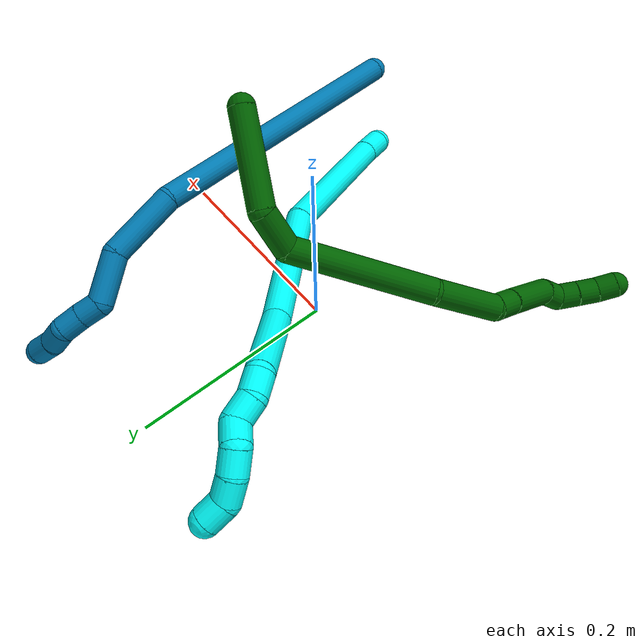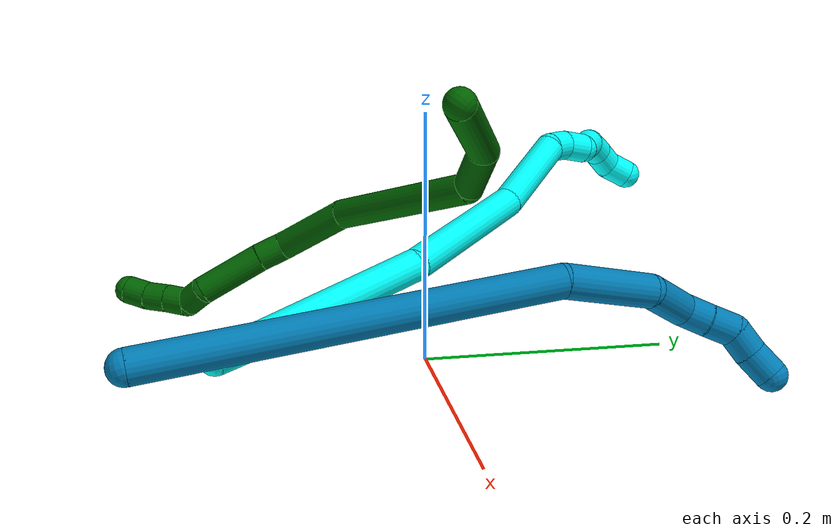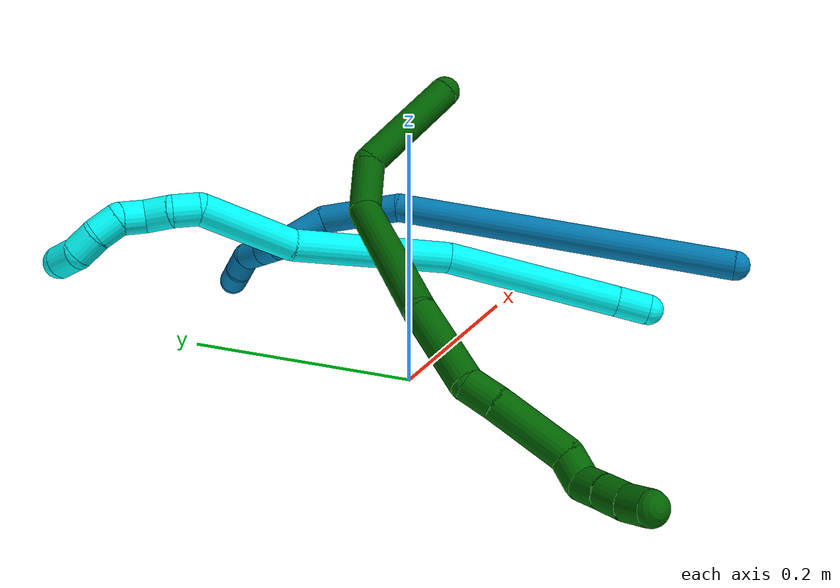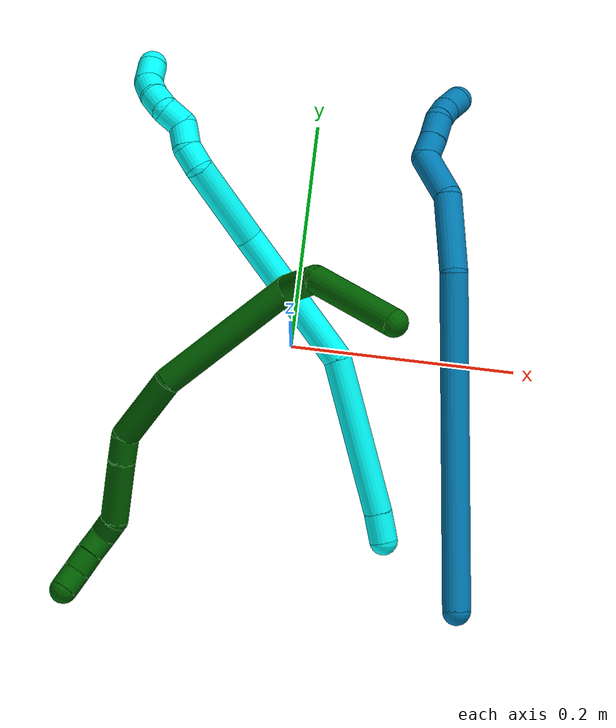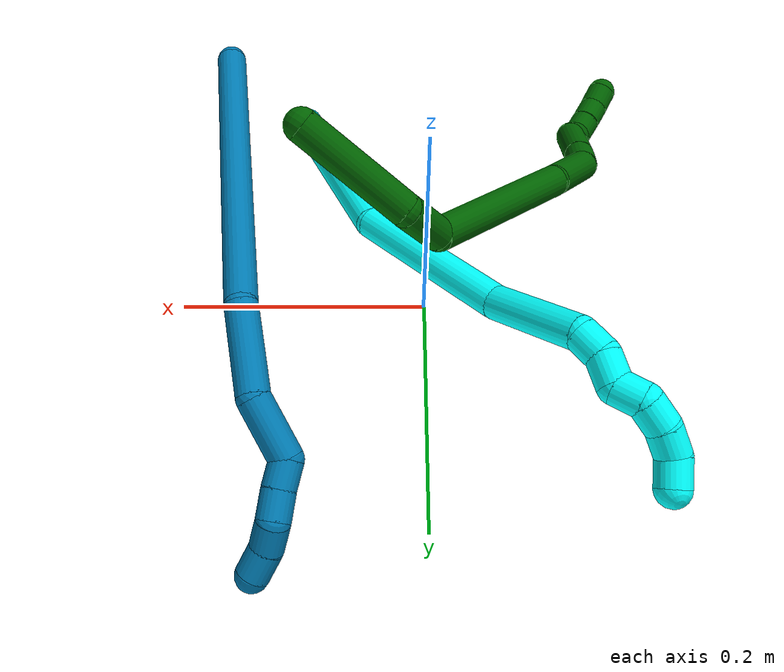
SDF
<sdf version="1.7">
 <world name="default">
  <model name="bin">
   <static>1</static>
   <link name="bottom">
    <collision name="collision-bottom">
     <pose>0 0 -0.01 0 -0 0</pose>
     <geometry><box><size>0.8 0.6 0.02</size></box></geometry>
     <surface>
      <friction><ode><mu>100</mu><mu2>100</mu2></ode></friction>
      <contact><collide_bitmask>65535</collide_bitmask></contact>
     </surface>
    </collision>
   </link>
   <link name="west_wall">
    <collision name="collision-west_wall">
     <pose>-0.41 0 0.1 0 -0 0</pose>
     <geometry><box><size>0.02 0.6 0.2</size></box></geometry>
     <surface>
      <friction><ode><mu>100</mu><mu2>100</mu2></ode></friction>
      <contact><collide_bitmask>65535</collide_bitmask></contact>
     </surface>
    </collision>
   </link>
   <link name="east_wall">
    <collision name="collision-east_wall">
     <pose>0.41 0 0.1 0 -0 0</pose>
     <geometry><box><size>0.02 0.6 0.2</size></box></geometry>
     <surface>
      <friction><ode><mu>100</mu><mu2>100</mu2></ode></friction>
      <contact><collide_bitmask>65535</collide_bitmask></contact>
     </surface>
    </collision>
   </link>
   <link name="south_wall">
    <collision name="collision-south_wall">
     <pose>0 -0.31 0.1 0 -0 0</pose>
     <geometry><box><size>0.8 0.02 0.2</size></box></geometry>
     <surface>
      <friction><ode><mu>100</mu><mu2>100</mu2></ode></friction>
      <contact><collide_bitmask>65535</collide_bitmask></contact>
     </surface>
    </collision>
   </link>
   <link name="north_wall">
    <collision name="collision-north_wall">
     <pose>0 0.31 0.1 0 -0 0</pose>
     <geometry><box><size>0.8 0.02 0.2</size></box></geometry>
     <surface>
      <friction><ode><mu>100</mu><mu2>100</mu2></ode></friction>
      <contact><collide_bitmask>65535</collide_bitmask></contact>
     </surface>
    </collision>
   </link>
  </model>
  <model name="3">
   <static>0</static>
   <link name="3">
    <collision name="collision-cylinder-e_1_1_4">
     <pose>-0.000333 0.001837 -0.013015 -3.00139 -0.025308 0.356621</pose>
     <geometry><cylinder><radius>0.0125</radius><length>0.026296</length></cylinder></geometry>
     <surface>
      <friction><ode><mu>1.16</mu><mu2>1.16</mu2><slip1>0</slip1><slip2>0</slip2></ode></friction>
      <contact><ode><kp>1e+06</kp><kd>1</kd><max_vel>0</max_vel><min_depth>0.001</min_depth></ode></contact>
     </surface>
    </collision>
    <visual name="visual-cylinder-e_1_1_4">
     <pose>-0.000333 0.001837 -0.013015 -3.00139 -0.025308 0.356621</pose>
     <geometry><cylinder><radius>0.0125</radius><length>0.026296</length></cylinder></geometry>
     <material><ambient>0.003922 1 0.996078 1</ambient></material>
    </visual>
    <collision name="collision-cylinder-e_2_4_5">
     <pose>-0.003725 0.018065 -0.095249 -2.9366 -0.043247 0.414476</pose>
     <geometry><cylinder><radius>0.0125</radius><length>0.141532</length></cylinder></geometry>
     <surface>
      <friction><ode><mu>1.16</mu><mu2>1.16</mu2><slip1>0</slip1><slip2>0</slip2></ode></friction>
      <contact><ode><kp>1e+06</kp><kd>1</kd><max_vel>0</max_vel><min_depth>0.001</min_depth></ode></contact>
     </surface>
    </collision>
    <visual name="visual-cylinder-e_2_4_5">
     <pose>-0.003725 0.018065 -0.095249 -2.9366 -0.043247 0.414476</pose>
     <geometry><cylinder><radius>0.0125</radius><length>0.141532</length></cylinder></geometry>
     <material><ambient>0.003922 1 0.996078 1</ambient></material>
    </visual>
    <collision name="collision-cylinder-e_3_5_6">
     <pose>-0.023561 0.063729 -0.2196 -2.62563 -0.258756 0.916198</pose>
     <geometry><cylinder><radius>0.0125</radius><length>0.131131</length></cylinder></geometry>
     <surface>
      <friction><ode><mu>1.16</mu><mu2>1.16</mu2><slip1>0</slip1><slip2>0</slip2></ode></friction>
      <contact><ode><kp>1e+06</kp><kd>1</kd><max_vel>0</max_vel><min_depth>0.001</min_depth></ode></contact>
     </surface>
    </collision>
    <visual name="visual-cylinder-e_3_5_6">
     <pose>-0.023561 0.063729 -0.2196 -2.62563 -0.258756 0.916198</pose>
     <geometry><cylinder><radius>0.0125</radius><length>0.131131</length></cylinder></geometry>
     <material><ambient>0.003922 1 0.996078 1</ambient></material>
    </visual>
    <collision name="collision-cylinder-e_4_6_7">
     <pose>-0.040079 0.117775 -0.306552 -2.52038 0.006607 -0.020583</pose>
     <geometry><cylinder><radius>0.0125</radius><length>0.078264</length></cylinder></geometry>
     <surface>
      <friction><ode><mu>1.16</mu><mu2>1.16</mu2><slip1>0</slip1><slip2>0</slip2></ode></friction>
      <contact><ode><kp>1e+06</kp><kd>1</kd><max_vel>0</max_vel><min_depth>0.001</min_depth></ode></contact>
     </surface>
    </collision>
    <visual name="visual-cylinder-e_4_6_7">
     <pose>-0.040079 0.117775 -0.306552 -2.52038 0.006607 -0.020583</pose>
     <geometry><cylinder><radius>0.0125</radius><length>0.078264</length></cylinder></geometry>
     <material><ambient>0.003922 1 0.996078 1</ambient></material>
    </visual>
    <collision name="collision-cylinder-e_5_7_8">
     <pose>-0.043916 0.143657 -0.347313 -2.80714 -0.408373 1.77374</pose>
     <geometry><cylinder><radius>0.0125</radius><length>0.020626</length></cylinder></geometry>
     <surface>
      <friction><ode><mu>1.16</mu><mu2>1.16</mu2><slip1>0</slip1><slip2>0</slip2></ode></friction>
      <contact><ode><kp>1e+06</kp><kd>1</kd><max_vel>0</max_vel><min_depth>0.001</min_depth></ode></contact>
     </surface>
    </collision>
    <visual name="visual-cylinder-e_5_7_8">
     <pose>-0.043916 0.143657 -0.347313 -2.80714 -0.408373 1.77374</pose>
     <geometry><cylinder><radius>0.0125</radius><length>0.020626</length></cylinder></geometry>
     <material><ambient>0.003922 1 0.996078 1</ambient></material>
    </visual>
    <collision name="collision-cylinder-e_6_8_9">
     <pose>-0.052341 0.145624 -0.366067 3.02599 -0.412965 -2.60254</pose>
     <geometry><cylinder><radius>0.0125</radius><length>0.021573</length></cylinder></geometry>
     <surface>
      <friction><ode><mu>1.16</mu><mu2>1.16</mu2><slip1>0</slip1><slip2>0</slip2></ode></friction>
      <contact><ode><kp>1e+06</kp><kd>1</kd><max_vel>0</max_vel><min_depth>0.001</min_depth></ode></contact>
     </surface>
    </collision>
    <visual name="visual-cylinder-e_6_8_9">
     <pose>-0.052341 0.145624 -0.366067 3.02599 -0.412965 -2.60254</pose>
     <geometry><cylinder><radius>0.0125</radius><length>0.021573</length></cylinder></geometry>
     <material><ambient>0.003922 1 0.996078 1</ambient></material>
    </visual>
    <collision name="collision-cylinder-e_7_9_10">
     <pose>-0.061018 0.150393 -0.38288 -2.44046 -0.443203 1.1044</pose>
     <geometry><cylinder><radius>0.0125</radius><length>0.020279</length></cylinder></geometry>
     <surface>
      <friction><ode><mu>1.16</mu><mu2>1.16</mu2><slip1>0</slip1><slip2>0</slip2></ode></friction>
      <contact><ode><kp>1e+06</kp><kd>1</kd><max_vel>0</max_vel><min_depth>0.001</min_depth></ode></contact>
     </surface>
    </collision>
    <visual name="visual-cylinder-e_7_9_10">
     <pose>-0.061018 0.150393 -0.38288 -2.44046 -0.443203 1.1044</pose>
     <geometry><cylinder><radius>0.0125</radius><length>0.020279</length></cylinder></geometry>
     <material><ambient>0.003922 1 0.996078 1</ambient></material>
    </visual>
    <collision name="collision-cylinder-e_8_10_11">
     <pose>-0.073393 0.156919 -0.395873 -3.03907 -0.926907 2.93698</pose>
     <geometry><cylinder><radius>0.0125</radius><length>0.020074</length></cylinder></geometry>
     <surface>
      <friction><ode><mu>1.16</mu><mu2>1.16</mu2><slip1>0</slip1><slip2>0</slip2></ode></friction>
      <contact><ode><kp>1e+06</kp><kd>1</kd><max_vel>0</max_vel><min_depth>0.001</min_depth></ode></contact>
     </surface>
    </collision>
    <visual name="visual-cylinder-e_8_10_11">
     <pose>-0.073393 0.156919 -0.395873 -3.03907 -0.926907 2.93698</pose>
     <geometry><cylinder><radius>0.0125</radius><length>0.020074</length></cylinder></geometry>
     <material><ambient>0.003922 1 0.996078 1</ambient></material>
    </visual>
    <collision name="collision-cylinder-e_9_11_12">
     <pose>-0.089598 0.155565 -0.40739 2.79885 -0.948629 -2.49132</pose>
     <geometry><cylinder><radius>0.0125</radius><length>0.020126</length></cylinder></geometry>
     <surface>
      <friction><ode><mu>1.16</mu><mu2>1.16</mu2><slip1>0</slip1><slip2>0</slip2></ode></friction>
      <contact><ode><kp>1e+06</kp><kd>1</kd><max_vel>0</max_vel><min_depth>0.001</min_depth></ode></contact>
     </surface>
    </collision>
    <visual name="visual-cylinder-e_9_11_12">
     <pose>-0.089598 0.155565 -0.40739 2.79885 -0.948629 -2.49132</pose>
     <geometry><cylinder><radius>0.0125</radius><length>0.020126</length></cylinder></geometry>
     <material><ambient>0.003922 1 0.996078 1</ambient></material>
    </visual>
    <collision name="collision-cylinder-e_10_12_2">
     <pose>-0.102105 0.148571 -0.420465 2.55471 -0.445386 -1.28626</pose>
     <geometry><cylinder><radius>0.0125</radius><length>0.0201</length></cylinder></geometry>
     <surface>
      <friction><ode><mu>1.16</mu><mu2>1.16</mu2><slip1>0</slip1><slip2>0</slip2></ode></friction>
      <contact><ode><kp>1e+06</kp><kd>1</kd><max_vel>0</max_vel><min_depth>0.001</min_depth></ode></contact>
     </surface>
    </collision>
    <visual name="visual-cylinder-e_10_12_2">
     <pose>-0.102105 0.148571 -0.420465 2.55471 -0.445386 -1.28626</pose>
     <geometry><cylinder><radius>0.0125</radius><length>0.0201</length></cylinder></geometry>
     <material><ambient>0.003922 1 0.996078 1</ambient></material>
    </visual>
    <collision name="collision-sphere-2">
     <pose>-0.106434 0.143549 -0.428017 0 -0 0</pose>
     <geometry><sphere><radius>0.0125</radius></sphere></geometry>
     <surface>
      <friction><ode><mu>1.16</mu><mu2>1.16</mu2><slip1>0</slip1><slip2>0</slip2></ode></friction>
      <contact><ode><kp>1e+06</kp><kd>1</kd><max_vel>0</max_vel><min_depth>0.001</min_depth></ode></contact>
     </surface>
    </collision>
    <visual name="visual-sphere-2">
     <pose>-0.106434 0.143549 -0.428017 0 -0 0</pose>
     <geometry><sphere><radius>0.0125</radius></sphere></geometry>
     <material><ambient>0.003922 1 0.996078 1</ambient></material>
    </visual>
    <collision name="collision-sphere-12">
     <pose>-0.097775 0.153594 -0.412914 0 -0 0</pose>
     <geometry><sphere><radius>0.0125</radius></sphere></geometry>
     <surface>
      <friction><ode><mu>1.16</mu><mu2>1.16</mu2><slip1>0</slip1><slip2>0</slip2></ode></friction>
      <contact><ode><kp>1e+06</kp><kd>1</kd><max_vel>0</max_vel><min_depth>0.001</min_depth></ode></contact>
     </surface>
    </collision>
    <visual name="visual-sphere-12">
     <pose>-0.097775 0.153594 -0.412914 0 -0 0</pose>
     <geometry><sphere><radius>0.0125</radius></sphere></geometry>
     <material><ambient>0.003922 1 0.996078 1</ambient></material>
    </visual>
    <collision name="collision-sphere-11">
     <pose>-0.081421 0.157535 -0.401867 0 -0 0</pose>
     <geometry><sphere><radius>0.0125</radius></sphere></geometry>
     <surface>
      <friction><ode><mu>1.16</mu><mu2>1.16</mu2><slip1>0</slip1><slip2>0</slip2></ode></friction>
      <contact><ode><kp>1e+06</kp><kd>1</kd><max_vel>0</max_vel><min_depth>0.001</min_depth></ode></contact>
     </surface>
    </collision>
    <visual name="visual-sphere-11">
     <pose>-0.081421 0.157535 -0.401867 0 -0 0</pose>
     <geometry><sphere><radius>0.0125</radius></sphere></geometry>
     <material><ambient>0.003922 1 0.996078 1</ambient></material>
    </visual>
    <collision name="collision-sphere-10">
     <pose>-0.065366 0.156302 -0.389879 0 -0 0</pose>
     <geometry><sphere><radius>0.0125</radius></sphere></geometry>
     <surface>
      <friction><ode><mu>1.16</mu><mu2>1.16</mu2><slip1>0</slip1><slip2>0</slip2></ode></friction>
      <contact><ode><kp>1e+06</kp><kd>1</kd><max_vel>0</max_vel><min_depth>0.001</min_depth></ode></contact>
     </surface>
    </collision>
    <visual name="visual-sphere-10">
     <pose>-0.065366 0.156302 -0.389879 0 -0 0</pose>
     <geometry><sphere><radius>0.0125</radius></sphere></geometry>
     <material><ambient>0.003922 1 0.996078 1</ambient></material>
    </visual>
    <collision name="collision-sphere-9">
     <pose>-0.05667 0.144484 -0.375881 0 -0 0</pose>
     <geometry><sphere><radius>0.0125</radius></sphere></geometry>
     <surface>
      <friction><ode><mu>1.16</mu><mu2>1.16</mu2><slip1>0</slip1><slip2>0</slip2></ode></friction>
      <contact><ode><kp>1e+06</kp><kd>1</kd><max_vel>0</max_vel><min_depth>0.001</min_depth></ode></contact>
     </surface>
    </collision>
    <visual name="visual-sphere-9">
     <pose>-0.05667 0.144484 -0.375881 0 -0 0</pose>
     <geometry><sphere><radius>0.0125</radius></sphere></geometry>
     <material><ambient>0.003922 1 0.996078 1</ambient></material>
    </visual>
    <collision name="collision-sphere-4">
     <pose>-0.000665 0.003674 -0.02603 0 -0 0</pose>
     <geometry><sphere><radius>0.0125</radius></sphere></geometry>
     <surface>
      <friction><ode><mu>1.16</mu><mu2>1.16</mu2><slip1>0</slip1><slip2>0</slip2></ode></friction>
      <contact><ode><kp>1e+06</kp><kd>1</kd><max_vel>0</max_vel><min_depth>0.001</min_depth></ode></contact>
     </surface>
    </collision>
    <visual name="visual-sphere-4">
     <pose>-0.000665 0.003674 -0.02603 0 -0 0</pose>
     <geometry><sphere><radius>0.0125</radius></sphere></geometry>
     <material><ambient>0.003922 1 0.996078 1</ambient></material>
    </visual>
    <collision name="collision-sphere-1">
     <geometry><sphere><radius>0.0125</radius></sphere></geometry>
     <surface>
      <friction><ode><mu>1.16</mu><mu2>1.16</mu2><slip1>0</slip1><slip2>0</slip2></ode></friction>
      <contact><ode><kp>1e+06</kp><kd>1</kd><max_vel>0</max_vel><min_depth>0.001</min_depth></ode></contact>
     </surface>
    </collision>
    <visual name="visual-sphere-1">
     <geometry><sphere><radius>0.0125</radius></sphere></geometry>
     <material><ambient>0.003922 1 0.996078 1</ambient></material>
    </visual>
    <collision name="collision-sphere-8">
     <pose>-0.048012 0.146764 -0.356254 0 -0 0</pose>
     <geometry><sphere><radius>0.0125</radius></sphere></geometry>
     <surface>
      <friction><ode><mu>1.16</mu><mu2>1.16</mu2><slip1>0</slip1><slip2>0</slip2></ode></friction>
      <contact><ode><kp>1e+06</kp><kd>1</kd><max_vel>0</max_vel><min_depth>0.001</min_depth></ode></contact>
     </surface>
    </collision>
    <visual name="visual-sphere-8">
     <pose>-0.048012 0.146764 -0.356254 0 -0 0</pose>
     <geometry><sphere><radius>0.0125</radius></sphere></geometry>
     <material><ambient>0.003922 1 0.996078 1</ambient></material>
    </visual>
    <collision name="collision-sphere-5">
     <pose>-0.006784 0.032457 -0.164468 0 -0 0</pose>
     <geometry><sphere><radius>0.0125</radius></sphere></geometry>
     <surface>
      <friction><ode><mu>1.16</mu><mu2>1.16</mu2><slip1>0</slip1><slip2>0</slip2></ode></friction>
      <contact><ode><kp>1e+06</kp><kd>1</kd><max_vel>0</max_vel><min_depth>0.001</min_depth></ode></contact>
     </surface>
    </collision>
    <visual name="visual-sphere-5">
     <pose>-0.006784 0.032457 -0.164468 0 -0 0</pose>
     <geometry><sphere><radius>0.0125</radius></sphere></geometry>
     <material><ambient>0.003922 1 0.996078 1</ambient></material>
    </visual>
    <collision name="collision-sphere-6">
     <pose>-0.040338 0.095 -0.274732 0 -0 0</pose>
     <geometry><sphere><radius>0.0125</radius></sphere></geometry>
     <surface>
      <friction><ode><mu>1.16</mu><mu2>1.16</mu2><slip1>0</slip1><slip2>0</slip2></ode></friction>
      <contact><ode><kp>1e+06</kp><kd>1</kd><max_vel>0</max_vel><min_depth>0.001</min_depth></ode></contact>
     </surface>
    </collision>
    <visual name="visual-sphere-6">
     <pose>-0.040338 0.095 -0.274732 0 -0 0</pose>
     <geometry><sphere><radius>0.0125</radius></sphere></geometry>
     <material><ambient>0.003922 1 0.996078 1</ambient></material>
    </visual>
    <collision name="collision-sphere-7">
     <pose>-0.039821 0.14055 -0.338372 0 -0 0</pose>
     <geometry><sphere><radius>0.0125</radius></sphere></geometry>
     <surface>
      <friction><ode><mu>1.16</mu><mu2>1.16</mu2><slip1>0</slip1><slip2>0</slip2></ode></friction>
      <contact><ode><kp>1e+06</kp><kd>1</kd><max_vel>0</max_vel><min_depth>0.001</min_depth></ode></contact>
     </surface>
    </collision>
    <visual name="visual-sphere-7">
     <pose>-0.039821 0.14055 -0.338372 0 -0 0</pose>
     <geometry><sphere><radius>0.0125</radius></sphere></geometry>
     <material><ambient>0.003922 1 0.996078 1</ambient></material>
    </visual>
    <inertial>
     <pose>-0.030727 0.077202 -0.228067 0 -0 0</pose>
     <mass>0.5</mass>
     <inertia>
      <ixx>0.000615</ixx>
      <ixy>0</ixy>
      <ixz>0</ixz>
      <iyy>-7.5e-05</iyy>
      <iyz>0</iyz>
      <izz>-0.000136</izz>
     </inertia>
    </inertial>
   </link>
   <pose>0.101755 -0.166551 0.0508 1.94461 -1.01394 -0.143067</pose>
  </model>
  <model name="6">
   <static>0</static>
   <link name="6">
    <collision name="collision-cylinder-e_1_1_4">
     <pose>0.034437 -0.029737 0.003249 1.46198 0.855563 0.776207</pose>
     <geometry><cylinder><radius>0.0125</radius><length>0.091231</length></cylinder></geometry>
     <surface>
      <friction><ode><mu>1.16</mu><mu2>1.16</mu2><slip1>0</slip1><slip2>0</slip2></ode></friction>
      <contact><ode><kp>1e+06</kp><kd>1</kd><max_vel>0</max_vel><min_depth>0.001</min_depth></ode></contact>
     </surface>
    </collision>
    <visual name="visual-cylinder-e_1_1_4">
     <pose>0.034437 -0.029737 0.003249 1.46198 0.855563 0.776207</pose>
     <geometry><cylinder><radius>0.0125</radius><length>0.091231</length></cylinder></geometry>
     <material><ambient>0 0.392157 0.003922 1</ambient></material>
    </visual>
    <collision name="collision-cylinder-e_2_4_5">
     <pose>0.072875 -0.079682 0.005902 1.60029 0.195364 0.201175</pose>
     <geometry><cylinder><radius>0.0125</radius><length>0.041216</length></cylinder></geometry>
     <surface>
      <friction><ode><mu>1.16</mu><mu2>1.16</mu2><slip1>0</slip1><slip2>0</slip2></ode></friction>
      <contact><ode><kp>1e+06</kp><kd>1</kd><max_vel>0</max_vel><min_depth>0.001</min_depth></ode></contact>
     </surface>
    </collision>
    <visual name="visual-cylinder-e_2_4_5">
     <pose>0.072875 -0.079682 0.005902 1.60029 0.195364 0.201175</pose>
     <geometry><cylinder><radius>0.0125</radius><length>0.041216</length></cylinder></geometry>
     <material><ambient>0 0.392157 0.003922 1</ambient></material>
    </visual>
    <collision name="collision-cylinder-e_3_5_6">
     <pose>0.078497 -0.149359 -0.041346 2.32688 0.023843 0.055246</pose>
     <geometry><cylinder><radius>0.0125</radius><length>0.136032</length></cylinder></geometry>
     <surface>
      <friction><ode><mu>1.16</mu><mu2>1.16</mu2><slip1>0</slip1><slip2>0</slip2></ode></friction>
      <contact><ode><kp>1e+06</kp><kd>1</kd><max_vel>0</max_vel><min_depth>0.001</min_depth></ode></contact>
     </surface>
    </collision>
    <visual name="visual-cylinder-e_3_5_6">
     <pose>0.078497 -0.149359 -0.041346 2.32688 0.023843 0.055246</pose>
     <geometry><cylinder><radius>0.0125</radius><length>0.136032</length></cylinder></geometry>
     <material><ambient>0 0.392157 0.003922 1</ambient></material>
    </visual>
    <collision name="collision-cylinder-e_4_6_7">
     <pose>0.073008 -0.227415 -0.105046 2.10856 -0.210445 -0.367711</pose>
     <geometry><cylinder><radius>0.0125</radius><length>0.068071</length></cylinder></geometry>
     <surface>
      <friction><ode><mu>1.16</mu><mu2>1.16</mu2><slip1>0</slip1><slip2>0</slip2></ode></friction>
      <contact><ode><kp>1e+06</kp><kd>1</kd><max_vel>0</max_vel><min_depth>0.001</min_depth></ode></contact>
     </surface>
    </collision>
    <visual name="visual-cylinder-e_4_6_7">
     <pose>0.073008 -0.227415 -0.105046 2.10856 -0.210445 -0.367711</pose>
     <geometry><cylinder><radius>0.0125</radius><length>0.068071</length></cylinder></geometry>
     <material><ambient>0 0.392157 0.003922 1</ambient></material>
    </visual>
    <collision name="collision-cylinder-e_5_7_8">
     <pose>0.058312 -0.263604 -0.127163 2.15879 -0.692951 -1.18695</pose>
     <geometry><cylinder><radius>0.0125</radius><length>0.023752</length></cylinder></geometry>
     <surface>
      <friction><ode><mu>1.16</mu><mu2>1.16</mu2><slip1>0</slip1><slip2>0</slip2></ode></friction>
      <contact><ode><kp>1e+06</kp><kd>1</kd><max_vel>0</max_vel><min_depth>0.001</min_depth></ode></contact>
     </surface>
    </collision>
    <visual name="visual-cylinder-e_5_7_8">
     <pose>0.058312 -0.263604 -0.127163 2.15879 -0.692951 -1.18695</pose>
     <geometry><cylinder><radius>0.0125</radius><length>0.023752</length></cylinder></geometry>
     <material><ambient>0 0.392157 0.003922 1</ambient></material>
    </visual>
    <collision name="collision-cylinder-e_6_8_9">
     <pose>0.03219 -0.290943 -0.142845 2.06423 -0.691069 -1.08426</pose>
     <geometry><cylinder><radius>0.0125</radius><length>0.058164</length></cylinder></geometry>
     <surface>
      <friction><ode><mu>1.16</mu><mu2>1.16</mu2><slip1>0</slip1><slip2>0</slip2></ode></friction>
      <contact><ode><kp>1e+06</kp><kd>1</kd><max_vel>0</max_vel><min_depth>0.001</min_depth></ode></contact>
     </surface>
    </collision>
    <visual name="visual-cylinder-e_6_8_9">
     <pose>0.03219 -0.290943 -0.142845 2.06423 -0.691069 -1.08426</pose>
     <geometry><cylinder><radius>0.0125</radius><length>0.058164</length></cylinder></geometry>
     <material><ambient>0 0.392157 0.003922 1</ambient></material>
    </visual>
    <collision name="collision-cylinder-e_7_9_10">
     <pose>0.011265 -0.320187 -0.157418 1.96531 -0.22799 -0.340054</pose>
     <geometry><cylinder><radius>0.0125</radius><length>0.021145</length></cylinder></geometry>
     <surface>
      <friction><ode><mu>1.16</mu><mu2>1.16</mu2><slip1>0</slip1><slip2>0</slip2></ode></friction>
      <contact><ode><kp>1e+06</kp><kd>1</kd><max_vel>0</max_vel><min_depth>0.001</min_depth></ode></contact>
     </surface>
    </collision>
    <visual name="visual-cylinder-e_7_9_10">
     <pose>0.011265 -0.320187 -0.157418 1.96531 -0.22799 -0.340054</pose>
     <geometry><cylinder><radius>0.0125</radius><length>0.021145</length></cylinder></geometry>
     <material><ambient>0 0.392157 0.003922 1</ambient></material>
    </visual>
    <collision name="collision-cylinder-e_8_10_11">
     <pose>0.006654 -0.333592 -0.17034 2.73146 -0.223391 -0.989137</pose>
     <geometry><cylinder><radius>0.0125</radius><length>0.020047</length></cylinder></geometry>
     <surface>
      <friction><ode><mu>1.16</mu><mu2>1.16</mu2><slip1>0</slip1><slip2>0</slip2></ode></friction>
      <contact><ode><kp>1e+06</kp><kd>1</kd><max_vel>0</max_vel><min_depth>0.001</min_depth></ode></contact>
     </surface>
    </collision>
    <visual name="visual-cylinder-e_8_10_11">
     <pose>0.006654 -0.333592 -0.17034 2.73146 -0.223391 -0.989137</pose>
     <geometry><cylinder><radius>0.0125</radius><length>0.020047</length></cylinder></geometry>
     <material><ambient>0 0.392157 0.003922 1</ambient></material>
    </visual>
    <collision name="collision-cylinder-e_9_11_12">
     <pose>0.001727 -0.341744 -0.188041 2.68848 -0.271643 -1.07031</pose>
     <geometry><cylinder><radius>0.0125</radius><length>0.020175</length></cylinder></geometry>
     <surface>
      <friction><ode><mu>1.16</mu><mu2>1.16</mu2><slip1>0</slip1><slip2>0</slip2></ode></friction>
      <contact><ode><kp>1e+06</kp><kd>1</kd><max_vel>0</max_vel><min_depth>0.001</min_depth></ode></contact>
     </surface>
    </collision>
    <visual name="visual-cylinder-e_9_11_12">
     <pose>0.001727 -0.341744 -0.188041 2.68848 -0.271643 -1.07031</pose>
     <geometry><cylinder><radius>0.0125</radius><length>0.020175</length></cylinder></geometry>
     <material><ambient>0 0.392157 0.003922 1</ambient></material>
    </visual>
    <collision name="collision-cylinder-e_10_12_2">
     <pose>-0.003394 -0.348675 -0.206195 2.86463 -0.241756 -1.43374</pose>
     <geometry><cylinder><radius>0.0125</radius><length>0.020167</length></cylinder></geometry>
     <surface>
      <friction><ode><mu>1.16</mu><mu2>1.16</mu2><slip1>0</slip1><slip2>0</slip2></ode></friction>
      <contact><ode><kp>1e+06</kp><kd>1</kd><max_vel>0</max_vel><min_depth>0.001</min_depth></ode></contact>
     </surface>
    </collision>
    <visual name="visual-cylinder-e_10_12_2">
     <pose>-0.003394 -0.348675 -0.206195 2.86463 -0.241756 -1.43374</pose>
     <geometry><cylinder><radius>0.0125</radius><length>0.020167</length></cylinder></geometry>
     <material><ambient>0 0.392157 0.003922 1</ambient></material>
    </visual>
    <collision name="collision-sphere-2">
     <pose>-0.005808 -0.351351 -0.215612 0 -0 0</pose>
     <geometry><sphere><radius>0.0125</radius></sphere></geometry>
     <surface>
      <friction><ode><mu>1.16</mu><mu2>1.16</mu2><slip1>0</slip1><slip2>0</slip2></ode></friction>
      <contact><ode><kp>1e+06</kp><kd>1</kd><max_vel>0</max_vel><min_depth>0.001</min_depth></ode></contact>
     </surface>
    </collision>
    <visual name="visual-sphere-2">
     <pose>-0.005808 -0.351351 -0.215612 0 -0 0</pose>
     <geometry><sphere><radius>0.0125</radius></sphere></geometry>
     <material><ambient>0 0.392157 0.003922 1</ambient></material>
    </visual>
    <collision name="collision-sphere-12">
     <pose>-0.000979 -0.345998 -0.196778 0 -0 0</pose>
     <geometry><sphere><radius>0.0125</radius></sphere></geometry>
     <surface>
      <friction><ode><mu>1.16</mu><mu2>1.16</mu2><slip1>0</slip1><slip2>0</slip2></ode></friction>
      <contact><ode><kp>1e+06</kp><kd>1</kd><max_vel>0</max_vel><min_depth>0.001</min_depth></ode></contact>
     </surface>
    </collision>
    <visual name="visual-sphere-12">
     <pose>-0.000979 -0.345998 -0.196778 0 -0 0</pose>
     <geometry><sphere><radius>0.0125</radius></sphere></geometry>
     <material><ambient>0 0.392157 0.003922 1</ambient></material>
    </visual>
    <collision name="collision-sphere-11">
     <pose>0.004434 -0.33749 -0.179304 0 -0 0</pose>
     <geometry><sphere><radius>0.0125</radius></sphere></geometry>
     <surface>
      <friction><ode><mu>1.16</mu><mu2>1.16</mu2><slip1>0</slip1><slip2>0</slip2></ode></friction>
      <contact><ode><kp>1e+06</kp><kd>1</kd><max_vel>0</max_vel><min_depth>0.001</min_depth></ode></contact>
     </surface>
    </collision>
    <visual name="visual-sphere-11">
     <pose>0.004434 -0.33749 -0.179304 0 -0 0</pose>
     <geometry><sphere><radius>0.0125</radius></sphere></geometry>
     <material><ambient>0 0.392157 0.003922 1</ambient></material>
    </visual>
    <collision name="collision-sphere-10">
     <pose>0.008875 -0.329695 -0.161377 0 -0 0</pose>
     <geometry><sphere><radius>0.0125</radius></sphere></geometry>
     <surface>
      <friction><ode><mu>1.16</mu><mu2>1.16</mu2><slip1>0</slip1><slip2>0</slip2></ode></friction>
      <contact><ode><kp>1e+06</kp><kd>1</kd><max_vel>0</max_vel><min_depth>0.001</min_depth></ode></contact>
     </surface>
    </collision>
    <visual name="visual-sphere-10">
     <pose>0.008875 -0.329695 -0.161377 0 -0 0</pose>
     <geometry><sphere><radius>0.0125</radius></sphere></geometry>
     <material><ambient>0 0.392157 0.003922 1</ambient></material>
    </visual>
    <collision name="collision-sphere-9">
     <pose>0.013654 -0.310679 -0.15346 0 -0 0</pose>
     <geometry><sphere><radius>0.0125</radius></sphere></geometry>
     <surface>
      <friction><ode><mu>1.16</mu><mu2>1.16</mu2><slip1>0</slip1><slip2>0</slip2></ode></friction>
      <contact><ode><kp>1e+06</kp><kd>1</kd><max_vel>0</max_vel><min_depth>0.001</min_depth></ode></contact>
     </surface>
    </collision>
    <visual name="visual-sphere-9">
     <pose>0.013654 -0.310679 -0.15346 0 -0 0</pose>
     <geometry><sphere><radius>0.0125</radius></sphere></geometry>
     <material><ambient>0 0.392157 0.003922 1</ambient></material>
    </visual>
    <collision name="collision-sphere-4">
     <pose>0.068874 -0.059475 0.006498 0 -0 0</pose>
     <geometry><sphere><radius>0.0125</radius></sphere></geometry>
     <surface>
      <friction><ode><mu>1.16</mu><mu2>1.16</mu2><slip1>0</slip1><slip2>0</slip2></ode></friction>
      <contact><ode><kp>1e+06</kp><kd>1</kd><max_vel>0</max_vel><min_depth>0.001</min_depth></ode></contact>
     </surface>
    </collision>
    <visual name="visual-sphere-4">
     <pose>0.068874 -0.059475 0.006498 0 -0 0</pose>
     <geometry><sphere><radius>0.0125</radius></sphere></geometry>
     <material><ambient>0 0.392157 0.003922 1</ambient></material>
    </visual>
    <collision name="collision-sphere-1">
     <geometry><sphere><radius>0.0125</radius></sphere></geometry>
     <surface>
      <friction><ode><mu>1.16</mu><mu2>1.16</mu2><slip1>0</slip1><slip2>0</slip2></ode></friction>
      <contact><ode><kp>1e+06</kp><kd>1</kd><max_vel>0</max_vel><min_depth>0.001</min_depth></ode></contact>
     </surface>
    </collision>
    <visual name="visual-sphere-1">
     <geometry><sphere><radius>0.0125</radius></sphere></geometry>
     <material><ambient>0 0.392157 0.003922 1</ambient></material>
    </visual>
    <collision name="collision-sphere-8">
     <pose>0.050726 -0.271206 -0.132231 0 -0 0</pose>
     <geometry><sphere><radius>0.0125</radius></sphere></geometry>
     <surface>
      <friction><ode><mu>1.16</mu><mu2>1.16</mu2><slip1>0</slip1><slip2>0</slip2></ode></friction>
      <contact><ode><kp>1e+06</kp><kd>1</kd><max_vel>0</max_vel><min_depth>0.001</min_depth></ode></contact>
     </surface>
    </collision>
    <visual name="visual-sphere-8">
     <pose>0.050726 -0.271206 -0.132231 0 -0 0</pose>
     <geometry><sphere><radius>0.0125</radius></sphere></geometry>
     <material><ambient>0 0.392157 0.003922 1</ambient></material>
    </visual>
    <collision name="collision-sphere-5">
     <pose>0.076875 -0.09989 0.005305 0 -0 0</pose>
     <geometry><sphere><radius>0.0125</radius></sphere></geometry>
     <surface>
      <friction><ode><mu>1.16</mu><mu2>1.16</mu2><slip1>0</slip1><slip2>0</slip2></ode></friction>
      <contact><ode><kp>1e+06</kp><kd>1</kd><max_vel>0</max_vel><min_depth>0.001</min_depth></ode></contact>
     </surface>
    </collision>
    <visual name="visual-sphere-5">
     <pose>0.076875 -0.09989 0.005305 0 -0 0</pose>
     <geometry><sphere><radius>0.0125</radius></sphere></geometry>
     <material><ambient>0 0.392157 0.003922 1</ambient></material>
    </visual>
    <collision name="collision-sphere-6">
     <pose>0.080118 -0.198828 -0.087997 0 -0 0</pose>
     <geometry><sphere><radius>0.0125</radius></sphere></geometry>
     <surface>
      <friction><ode><mu>1.16</mu><mu2>1.16</mu2><slip1>0</slip1><slip2>0</slip2></ode></friction>
      <contact><ode><kp>1e+06</kp><kd>1</kd><max_vel>0</max_vel><min_depth>0.001</min_depth></ode></contact>
     </surface>
    </collision>
    <visual name="visual-sphere-6">
     <pose>0.080118 -0.198828 -0.087997 0 -0 0</pose>
     <geometry><sphere><radius>0.0125</radius></sphere></geometry>
     <material><ambient>0 0.392157 0.003922 1</ambient></material>
    </visual>
    <collision name="collision-sphere-7">
     <pose>0.065899 -0.256001 -0.122094 0 -0 0</pose>
     <geometry><sphere><radius>0.0125</radius></sphere></geometry>
     <surface>
      <friction><ode><mu>1.16</mu><mu2>1.16</mu2><slip1>0</slip1><slip2>0</slip2></ode></friction>
      <contact><ode><kp>1e+06</kp><kd>1</kd><max_vel>0</max_vel><min_depth>0.001</min_depth></ode></contact>
     </surface>
    </collision>
    <visual name="visual-sphere-7">
     <pose>0.065899 -0.256001 -0.122094 0 -0 0</pose>
     <geometry><sphere><radius>0.0125</radius></sphere></geometry>
     <material><ambient>0 0.392157 0.003922 1</ambient></material>
    </visual>
    <inertial>
     <pose>0.050777 -0.184726 -0.076519 0 -0 0</pose>
     <mass>0.5</mass>
     <inertia>
      <ixx>0.000305</ixx>
      <ixy>0</ixy>
      <ixz>0</ixz>
      <iyy>-0.000127</iyy>
      <iyz>0</iyz>
      <izz>0.000195</izz>
     </inertia>
    </inertial>
   </link>
   <pose>0.086712 0.00719 0.218569 2.08251 -0.116289 2.38015</pose>
  </model>
  <model name="9">
   <static>0</static>
   <link name="9">
    <collision name="collision-cylinder-e_1_1_4">
     <pose>-0.024114 0.143915 -0.022521 -1.72602 -0.164052 0.191564</pose>
     <geometry><cylinder><radius>0.0125</radius><length>0.295298</length></cylinder></geometry>
     <surface>
      <friction><ode><mu>1.16</mu><mu2>1.16</mu2><slip1>0</slip1><slip2>0</slip2></ode></friction>
      <contact><ode><kp>1e+06</kp><kd>1</kd><max_vel>0</max_vel><min_depth>0.001</min_depth></ode></contact>
     </surface>
    </collision>
    <visual name="visual-cylinder-e_1_1_4">
     <pose>-0.024114 0.143915 -0.022521 -1.72602 -0.164052 0.191564</pose>
     <geometry><cylinder><radius>0.0125</radius><length>0.295298</length></cylinder></geometry>
     <material><ambient>0 0.490196 0.709804 1</ambient></material>
    </visual>
    <collision name="collision-cylinder-e_2_4_5">
     <pose>-0.059216 0.318513 -0.059535 -2.0121 -0.313178 0.488432</pose>
     <geometry><cylinder><radius>0.0125</radius><length>0.071338</length></cylinder></geometry>
     <surface>
      <friction><ode><mu>1.16</mu><mu2>1.16</mu2><slip1>0</slip1><slip2>0</slip2></ode></friction>
      <contact><ode><kp>1e+06</kp><kd>1</kd><max_vel>0</max_vel><min_depth>0.001</min_depth></ode></contact>
     </surface>
    </collision>
    <visual name="visual-cylinder-e_2_4_5">
     <pose>-0.059216 0.318513 -0.059535 -2.0121 -0.313178 0.488432</pose>
     <geometry><cylinder><radius>0.0125</radius><length>0.071338</length></cylinder></geometry>
     <material><ambient>0 0.490196 0.709804 1</ambient></material>
    </visual>
    <collision name="collision-cylinder-e_3_5_6">
     <pose>-0.086164 0.362745 -0.085701 -2.28189 -0.7286 1.38764</pose>
     <geometry><cylinder><radius>0.0125</radius><length>0.047936</length></cylinder></geometry>
     <surface>
      <friction><ode><mu>1.16</mu><mu2>1.16</mu2><slip1>0</slip1><slip2>0</slip2></ode></friction>
      <contact><ode><kp>1e+06</kp><kd>1</kd><max_vel>0</max_vel><min_depth>0.001</min_depth></ode></contact>
     </surface>
    </collision>
    <visual name="visual-cylinder-e_3_5_6">
     <pose>-0.086164 0.362745 -0.085701 -2.28189 -0.7286 1.38764</pose>
     <geometry><cylinder><radius>0.0125</radius><length>0.047936</length></cylinder></geometry>
     <material><ambient>0 0.490196 0.709804 1</ambient></material>
    </visual>
    <collision name="collision-cylinder-e_4_6_7">
     <pose>-0.101778 0.383944 -0.10444 -2.31664 0.033065 -0.075535</pose>
     <geometry><cylinder><radius>0.0125</radius><length>0.020843</length></cylinder></geometry>
     <surface>
      <friction><ode><mu>1.16</mu><mu2>1.16</mu2><slip1>0</slip1><slip2>0</slip2></ode></friction>
      <contact><ode><kp>1e+06</kp><kd>1</kd><max_vel>0</max_vel><min_depth>0.001</min_depth></ode></contact>
     </surface>
    </collision>
    <visual name="visual-cylinder-e_4_6_7">
     <pose>-0.101778 0.383944 -0.10444 -2.31664 0.033065 -0.075535</pose>
     <geometry><cylinder><radius>0.0125</radius><length>0.020843</length></cylinder></geometry>
     <material><ambient>0 0.490196 0.709804 1</ambient></material>
    </visual>
    <collision name="collision-cylinder-e_5_7_8">
     <pose>-0.101943 0.399793 -0.118599 -2.28389 -0.046963 0.10264</pose>
     <geometry><cylinder><radius>0.0125</radius><length>0.021702</length></cylinder></geometry>
     <surface>
      <friction><ode><mu>1.16</mu><mu2>1.16</mu2><slip1>0</slip1><slip2>0</slip2></ode></friction>
      <contact><ode><kp>1e+06</kp><kd>1</kd><max_vel>0</max_vel><min_depth>0.001</min_depth></ode></contact>
     </surface>
    </collision>
    <visual name="visual-cylinder-e_5_7_8">
     <pose>-0.101943 0.399793 -0.118599 -2.28389 -0.046963 0.10264</pose>
     <geometry><cylinder><radius>0.0125</radius><length>0.021702</length></cylinder></geometry>
     <material><ambient>0 0.490196 0.709804 1</ambient></material>
    </visual>
    <collision name="collision-cylinder-e_6_8_9">
     <pose>-0.103025 0.411256 -0.135569 -2.82233 -0.055036 0.338651</pose>
     <geometry><cylinder><radius>0.0125</radius><length>0.020842</length></cylinder></geometry>
     <surface>
      <friction><ode><mu>1.16</mu><mu2>1.16</mu2><slip1>0</slip1><slip2>0</slip2></ode></friction>
      <contact><ode><kp>1e+06</kp><kd>1</kd><max_vel>0</max_vel><min_depth>0.001</min_depth></ode></contact>
     </surface>
    </collision>
    <visual name="visual-cylinder-e_6_8_9">
     <pose>-0.103025 0.411256 -0.135569 -2.82233 -0.055036 0.338651</pose>
     <geometry><cylinder><radius>0.0125</radius><length>0.020842</length></cylinder></geometry>
     <material><ambient>0 0.490196 0.709804 1</ambient></material>
    </visual>
    <collision name="collision-cylinder-e_7_9_2">
     <pose>-0.101626 0.41845 -0.155555 -2.77091 0.179981 -0.897102</pose>
     <geometry><cylinder><radius>0.0125</radius><length>0.022041</length></cylinder></geometry>
     <surface>
      <friction><ode><mu>1.16</mu><mu2>1.16</mu2><slip1>0</slip1><slip2>0</slip2></ode></friction>
      <contact><ode><kp>1e+06</kp><kd>1</kd><max_vel>0</max_vel><min_depth>0.001</min_depth></ode></contact>
     </surface>
    </collision>
    <visual name="visual-cylinder-e_7_9_2">
     <pose>-0.101626 0.41845 -0.155555 -2.77091 0.179981 -0.897102</pose>
     <geometry><cylinder><radius>0.0125</radius><length>0.022041</length></cylinder></geometry>
     <material><ambient>0 0.490196 0.709804 1</ambient></material>
    </visual>
    <collision name="collision-sphere-2">
     <pose>-0.099653 0.422378 -0.165661 0 -0 0</pose>
     <geometry><sphere><radius>0.0125</radius></sphere></geometry>
     <surface>
      <friction><ode><mu>1.16</mu><mu2>1.16</mu2><slip1>0</slip1><slip2>0</slip2></ode></friction>
      <contact><ode><kp>1e+06</kp><kd>1</kd><max_vel>0</max_vel><min_depth>0.001</min_depth></ode></contact>
     </surface>
    </collision>
    <visual name="visual-sphere-2">
     <pose>-0.099653 0.422378 -0.165661 0 -0 0</pose>
     <geometry><sphere><radius>0.0125</radius></sphere></geometry>
     <material><ambient>0 0.490196 0.709804 1</ambient></material>
    </visual>
    <collision name="collision-sphere-9">
     <pose>-0.103599 0.414522 -0.145448 0 -0 0</pose>
     <geometry><sphere><radius>0.0125</radius></sphere></geometry>
     <surface>
      <friction><ode><mu>1.16</mu><mu2>1.16</mu2><slip1>0</slip1><slip2>0</slip2></ode></friction>
      <contact><ode><kp>1e+06</kp><kd>1</kd><max_vel>0</max_vel><min_depth>0.001</min_depth></ode></contact>
     </surface>
    </collision>
    <visual name="visual-sphere-9">
     <pose>-0.103599 0.414522 -0.145448 0 -0 0</pose>
     <geometry><sphere><radius>0.0125</radius></sphere></geometry>
     <material><ambient>0 0.490196 0.709804 1</ambient></material>
    </visual>
    <collision name="collision-sphere-4">
     <pose>-0.048227 0.28783 -0.045041 0 -0 0</pose>
     <geometry><sphere><radius>0.0125</radius></sphere></geometry>
     <surface>
      <friction><ode><mu>1.16</mu><mu2>1.16</mu2><slip1>0</slip1><slip2>0</slip2></ode></friction>
      <contact><ode><kp>1e+06</kp><kd>1</kd><max_vel>0</max_vel><min_depth>0.001</min_depth></ode></contact>
     </surface>
    </collision>
    <visual name="visual-sphere-4">
     <pose>-0.048227 0.28783 -0.045041 0 -0 0</pose>
     <geometry><sphere><radius>0.0125</radius></sphere></geometry>
     <material><ambient>0 0.490196 0.709804 1</ambient></material>
    </visual>
    <collision name="collision-sphere-1">
     <geometry><sphere><radius>0.0125</radius></sphere></geometry>
     <surface>
      <friction><ode><mu>1.16</mu><mu2>1.16</mu2><slip1>0</slip1><slip2>0</slip2></ode></friction>
      <contact><ode><kp>1e+06</kp><kd>1</kd><max_vel>0</max_vel><min_depth>0.001</min_depth></ode></contact>
     </surface>
    </collision>
    <visual name="visual-sphere-1">
     <geometry><sphere><radius>0.0125</radius></sphere></geometry>
     <material><ambient>0 0.490196 0.709804 1</ambient></material>
    </visual>
    <collision name="collision-sphere-8">
     <pose>-0.102452 0.407991 -0.12569 0 -0 0</pose>
     <geometry><sphere><radius>0.0125</radius></sphere></geometry>
     <surface>
      <friction><ode><mu>1.16</mu><mu2>1.16</mu2><slip1>0</slip1><slip2>0</slip2></ode></friction>
      <contact><ode><kp>1e+06</kp><kd>1</kd><max_vel>0</max_vel><min_depth>0.001</min_depth></ode></contact>
     </surface>
    </collision>
    <visual name="visual-sphere-8">
     <pose>-0.102452 0.407991 -0.12569 0 -0 0</pose>
     <geometry><sphere><radius>0.0125</radius></sphere></geometry>
     <material><ambient>0 0.490196 0.709804 1</ambient></material>
    </visual>
    <collision name="collision-sphere-5">
     <pose>-0.070205 0.349196 -0.074029 0 -0 0</pose>
     <geometry><sphere><radius>0.0125</radius></sphere></geometry>
     <surface>
      <friction><ode><mu>1.16</mu><mu2>1.16</mu2><slip1>0</slip1><slip2>0</slip2></ode></friction>
      <contact><ode><kp>1e+06</kp><kd>1</kd><max_vel>0</max_vel><min_depth>0.001</min_depth></ode></contact>
     </surface>
    </collision>
    <visual name="visual-sphere-5">
     <pose>-0.070205 0.349196 -0.074029 0 -0 0</pose>
     <geometry><sphere><radius>0.0125</radius></sphere></geometry>
     <material><ambient>0 0.490196 0.709804 1</ambient></material>
    </visual>
    <collision name="collision-sphere-6">
     <pose>-0.102122 0.376294 -0.097372 0 -0 0</pose>
     <geometry><sphere><radius>0.0125</radius></sphere></geometry>
     <surface>
      <friction><ode><mu>1.16</mu><mu2>1.16</mu2><slip1>0</slip1><slip2>0</slip2></ode></friction>
      <contact><ode><kp>1e+06</kp><kd>1</kd><max_vel>0</max_vel><min_depth>0.001</min_depth></ode></contact>
     </surface>
    </collision>
    <visual name="visual-sphere-6">
     <pose>-0.102122 0.376294 -0.097372 0 -0 0</pose>
     <geometry><sphere><radius>0.0125</radius></sphere></geometry>
     <material><ambient>0 0.490196 0.709804 1</ambient></material>
    </visual>
    <collision name="collision-sphere-7">
     <pose>-0.101433 0.391595 -0.111508 0 -0 0</pose>
     <geometry><sphere><radius>0.0125</radius></sphere></geometry>
     <surface>
      <friction><ode><mu>1.16</mu><mu2>1.16</mu2><slip1>0</slip1><slip2>0</slip2></ode></friction>
      <contact><ode><kp>1e+06</kp><kd>1</kd><max_vel>0</max_vel><min_depth>0.001</min_depth></ode></contact>
     </surface>
    </collision>
    <visual name="visual-sphere-7">
     <pose>-0.101433 0.391595 -0.111508 0 -0 0</pose>
     <geometry><sphere><radius>0.0125</radius></sphere></geometry>
     <material><ambient>0 0.490196 0.709804 1</ambient></material>
    </visual>
    <inertial>
     <pose>-0.048393 0.234164 -0.052021 0 -0 0</pose>
     <mass>0.5</mass>
     <inertia>
      <ixx>0.002544</ixx>
      <ixy>0</ixy>
      <ixz>0</ixz>
      <iyy>0.000191</iyy>
      <iyz>0</iyz>
      <izz>-0.001784</izz>
     </inertia>
    </inertial>
   </link>
   <pose>0.171815 -0.221335 0.075027 0.31239 -0.321004 -0.078958</pose>
  </model>
 </world>
</sdf>
